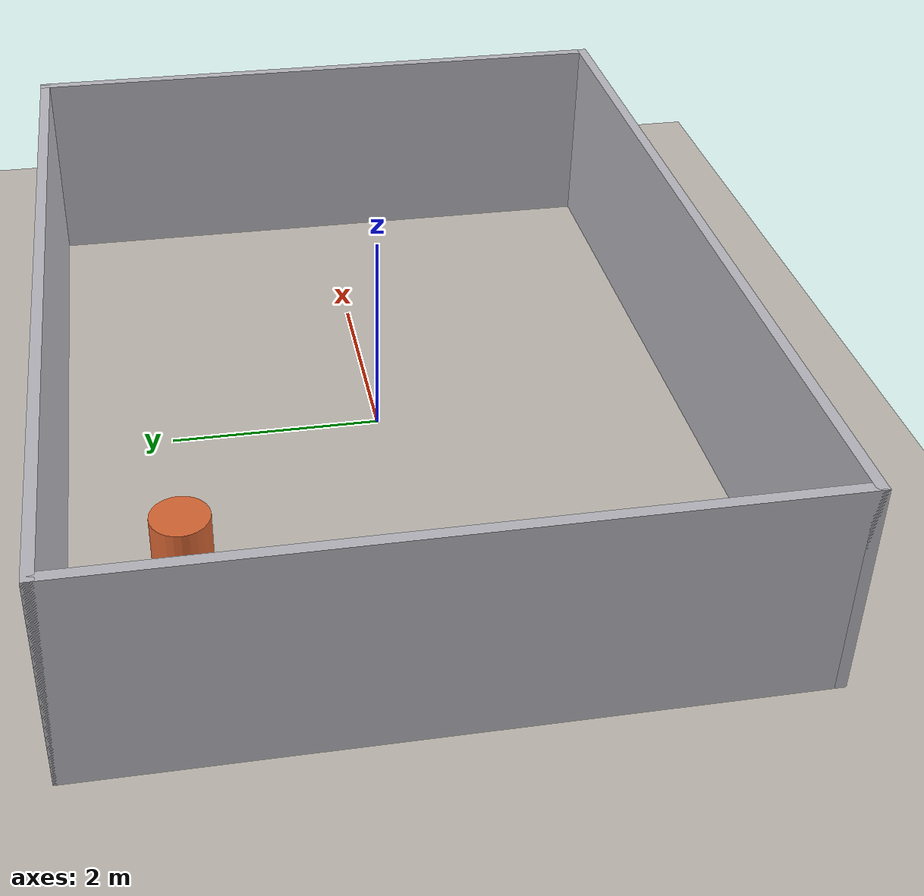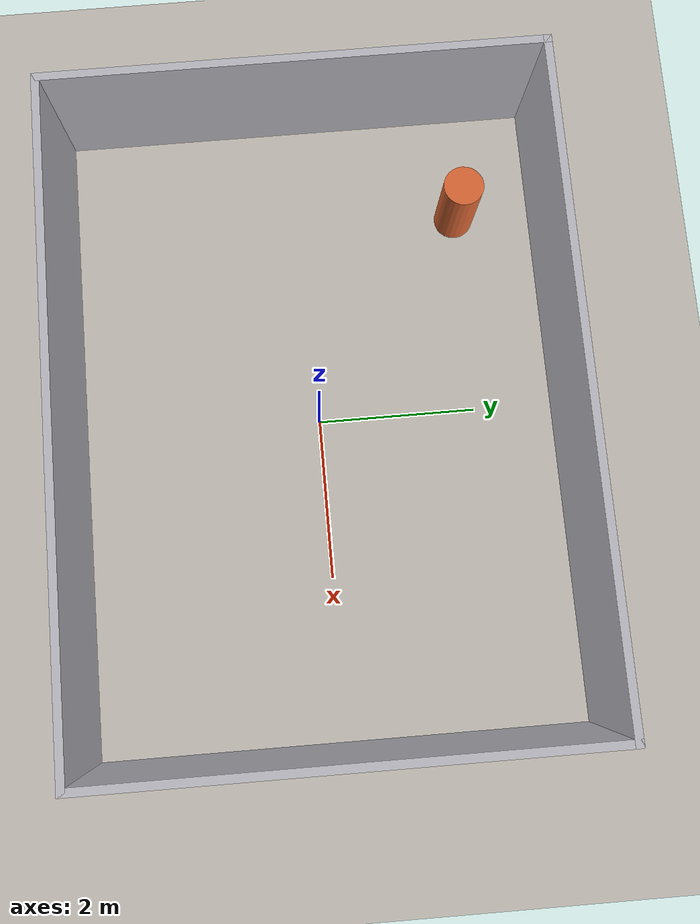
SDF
<sdf version="1.7">
 <world name="social_room">
  <physics type="ode"><max_step_size>0.01</max_step_size></physics>
  <light type="directional" name="sun">
   <pose>0 0 10 0 0 0</pose>
   <diffuse>0.9 0.9 0.9 1</diffuse>
   <specular>0.2 0.2 0.2 1</specular>
   <attenuation>
    <range>1000</range>
    <constant>0.9</constant>
    <linear>0.01</linear>
    <quadratic>0.001</quadratic>
   </attenuation>
   <direction>-0.4 0.2 -0.9</direction>
  </light>
  <light type="directional" name="fill">
   <cast_shadows>false</cast_shadows>
   <pose>0 0 8 0 0 0</pose>
   <diffuse>0.4 0.4 0.45 1</diffuse>
   <specular>0.0 0.0 0.0 1</specular>
   <direction>0.6 -0.3 -0.8</direction>
  </light>
  <model name="ground_plane">
   <static>true</static>
   <link name="link">
    <collision name="collision"><geometry><plane><normal>0 0 1</normal></plane></geometry></collision>
    <visual name="visual">
     <geometry><plane><normal>0 0 1</normal><size>100 100</size></plane></geometry>
     <material>
      <ambient>0.75 0.73 0.70 1</ambient>
      <diffuse>0.75 0.73 0.70 1</diffuse>
      <specular>0.1 0.1 0.1 1</specular>
     </material>
    </visual>
   </link>
  </model>
  <model name="wall_north">
   <static>true</static>
   <pose>0 3.05 1.0 0 0 0</pose>
   <link name="link">
    <collision name="collision"><geometry><box><size>8.2 0.1 2.0</size></box></geometry></collision>
    <visual name="visual">
     <geometry><box><size>8.2 0.1 2.0</size></box></geometry>
     <material><ambient>0.72 0.72 0.75 1</ambient><diffuse>0.72 0.72 0.75 1</diffuse></material>
    </visual>
   </link>
  </model>
  <model name="wall_south">
   <static>true</static>
   <pose>0 -3.05 1.0 0 0 0</pose>
   <link name="link">
    <collision name="collision"><geometry><box><size>8.2 0.1 2.0</size></box></geometry></collision>
    <visual name="visual">
     <geometry><box><size>8.2 0.1 2.0</size></box></geometry>
     <material><ambient>0.72 0.72 0.75 1</ambient><diffuse>0.72 0.72 0.75 1</diffuse></material>
    </visual>
   </link>
  </model>
  <model name="wall_east">
   <static>true</static>
   <pose>4.05 0 1.0 0 0 0</pose>
   <link name="link">
    <collision name="collision"><geometry><box><size>0.1 6.2 2.0</size></box></geometry></collision>
    <visual name="visual">
     <geometry><box><size>0.1 6.2 2.0</size></box></geometry>
     <material><ambient>0.72 0.72 0.75 1</ambient><diffuse>0.72 0.72 0.75 1</diffuse></material>
    </visual>
   </link>
  </model>
  <model name="wall_west">
   <static>true</static>
   <pose>-4.05 0 1.0 0 0 0</pose>
   <link name="link">
    <collision name="collision"><geometry><box><size>0.1 6.2 2.0</size></box></geometry></collision>
    <visual name="visual">
     <geometry><box><size>0.1 6.2 2.0</size></box></geometry>
     <material><ambient>0.72 0.72 0.75 1</ambient><diffuse>0.72 0.72 0.75 1</diffuse></material>
    </visual>
   </link>
  </model>
  <model name="pillar">
   <static>true</static>
   <pose>-2.6 2.0 0.6 0 0 0</pose>
   <link name="link">
    <collision name="collision">
     <geometry><cylinder><radius>0.25</radius><length>1.2</length></cylinder></geometry>
    </collision>
    <visual name="visual">
     <geometry><cylinder><radius>0.25</radius><length>1.2</length></cylinder></geometry>
     <material><ambient>0.85 0.4 0.2 1</ambient><diffuse>0.85 0.4 0.2 1</diffuse></material>
    </visual>
   </link>
  </model>
 </world>
</sdf>
